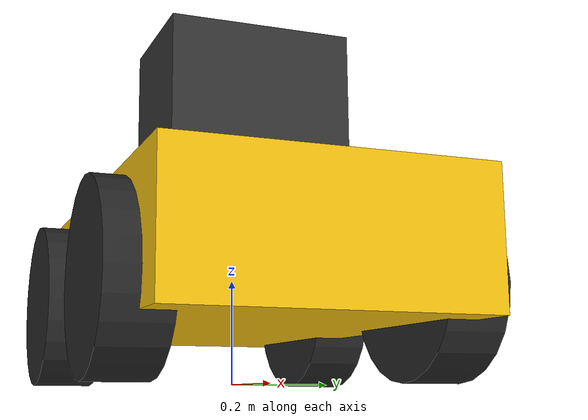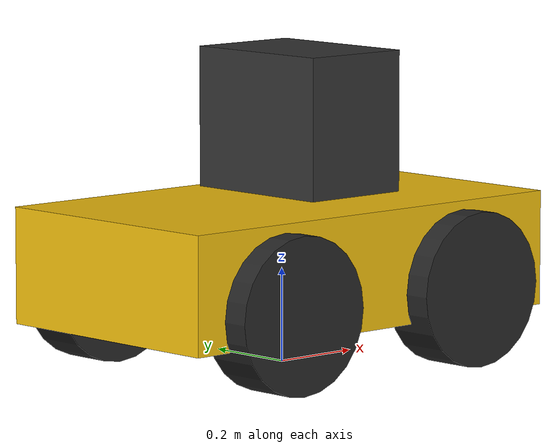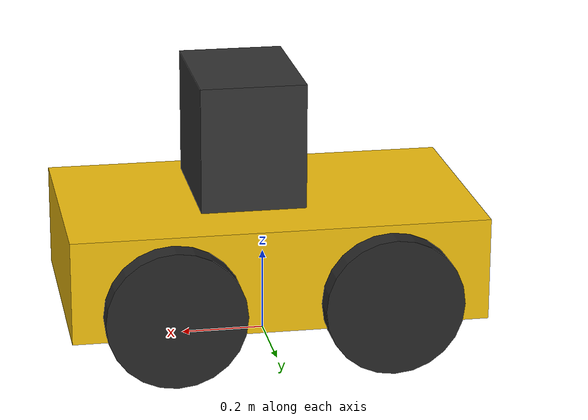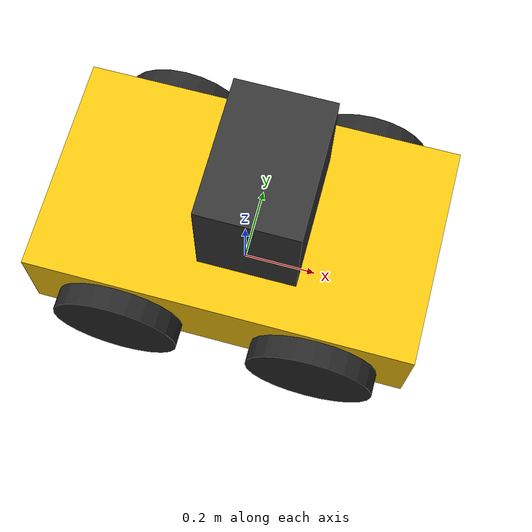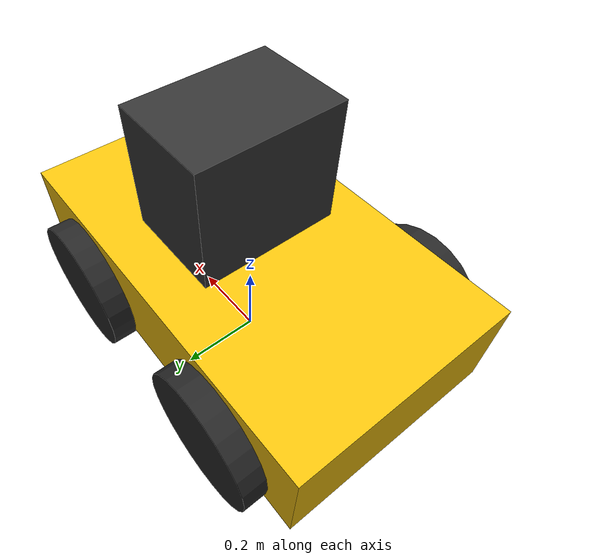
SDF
<?xml version="1.0" ?>
<sdf version="1.6">
  <model name="husky">
    <pose>0 0 0.165 0 0 0</pose>

    <!-- Base Link -->
    <link name="base_link">
      <inertial>
        <pose>0 0 0.06 0 0 0</pose>
        <mass>46.0</mass>
        <inertia>
          <ixx>0.6022</ixx><ixy>-0.0236</ixy><ixz>-0.1197</ixz>
          <iyy>1.7386</iyy><iyz>-0.0015</iyz><izz>2.0296</izz>
        </inertia>
      </inertial>
      <collision name="chassis_col">
        <pose>0 0 0.06 0 0 0</pose>
        <geometry><box><size>0.987 0.570 0.247</size></box></geometry>
      </collision>
      <visual name="chassis_vis">
        <pose>0 0 0.06 0 0 0</pose>
        <geometry><box><size>0.987 0.570 0.247</size></box></geometry>
        <material><ambient>0.95 0.75 0.05 1.0</ambient><diffuse>0.95 0.75 0.05 1.0</diffuse></material>
      </visual>
      <visual name="arch_vis">
        <pose>0.05 0 0.35 0 0 0</pose>
        <geometry><box><size>0.25 0.35 0.30</size></box></geometry>
        <material><ambient>0.2 0.2 0.2 1.0</ambient><diffuse>0.2 0.2 0.2 1.0</diffuse></material>
      </visual>

      <!-- RGB Camera / Depth Sensor -->
      <sensor name="camera" type="camera">
        <pose>0.20 0 0.52 0 0.1745 0</pose>
        <always_on>true</always_on>
        <update_rate>20.0</update_rate>
        <camera name="rgbd_camera">
          <horizontal_fov>1.3962634</horizontal_fov>
          <image><width>640</width><height>480</height><format>R8G8B8</format></image>
          <clip><near>0.1</near><far>25.0</far></clip>
        </camera>
        <plugin name="camera_driver" filename="libgazebo_ros_camera.so">
          <ros>
            <remapping>~/image_raw:=/camera/color/image_raw</remapping>
            <remapping>~/camera_info:=/camera/color/camera_info</remapping>
          </ros>
          <camera_name>camera</camera_name>
          <frame_name>camera_optical_frame</frame_name>
        </plugin>
      </sensor>

      <!-- IMU Sensor -->
      <sensor name="imu_sensor" type="imu">
        <pose>0 0 0.05 0 0 0</pose>
        <always_on>true</always_on>
        <update_rate>100</update_rate>
        <plugin name="imu_plugin" filename="libgazebo_ros_imu_sensor.so">
          <ros><remapping>~/out:=/imu/data</remapping></ros>
          <frame_name>imu_link</frame_name>
        </plugin>
      </sensor>

      <!-- 3D LiDAR Sensor -->
      <sensor name="lidar_sensor" type="ray">
        <pose>0.05 0 0.55 0 0 0</pose>
        <always_on>true</always_on>
        <update_rate>10</update_rate>
        <ray>
          <scan>
            <horizontal><samples>360</samples><min_angle>-3.14159</min_angle><max_angle>3.14159</max_angle></horizontal>
            <vertical><samples>16</samples><min_angle>-0.2618</min_angle><max_angle>0.2618</max_angle></vertical>
          </scan>
          <range><min>0.3</min><max>30.0</max><resolution>0.01</resolution></range>
        </ray>
        <plugin name="lidar_driver" filename="libgazebo_ros_ray_sensor.so">
          <ros><remapping>~/out:=/lidar/points</remapping></ros>
          <output_type>sensor_msgs/PointCloud2</output_type>
          <frame_name>lidar_link</frame_name>
        </plugin>
      </sensor>
    </link>

    <!-- Wheels -->
    <link name="front_left_wheel_link">
      <pose>0.256 0.2854 0 -1.570796 0 0</pose>
      <inertial><mass>2.637</mass><inertia><ixx>0.02467</ixx><iyy>0.02467</iyy><izz>0.04411</izz></inertia></inertial>
      <collision name="col"><geometry><cylinder><radius>0.1651</radius><length>0.1143</length></cylinder></geometry></collision>
      <visual name="vis"><geometry><cylinder><radius>0.1651</radius><length>0.1143</length></cylinder></geometry><material><ambient>0.15 0.15 0.15 1</ambient></material></visual>
    </link>
    <joint name="front_left_wheel_joint" type="revolute">
      <parent>base_link</parent><child>front_left_wheel_link</child><axis><xyz>0 0 1</xyz></axis>
    </joint>

    <link name="front_right_wheel_link">
      <pose>0.256 -0.2854 0 -1.570796 0 0</pose>
      <inertial><mass>2.637</mass><inertia><ixx>0.02467</ixx><iyy>0.02467</iyy><izz>0.04411</izz></inertia></inertial>
      <collision name="col"><geometry><cylinder><radius>0.1651</radius><length>0.1143</length></cylinder></geometry></collision>
      <visual name="vis"><geometry><cylinder><radius>0.1651</radius><length>0.1143</length></cylinder></geometry><material><ambient>0.15 0.15 0.15 1</ambient></material></visual>
    </link>
    <joint name="front_right_wheel_joint" type="revolute">
      <parent>base_link</parent><child>front_right_wheel_link</child><axis><xyz>0 0 1</xyz></axis>
    </joint>

    <link name="rear_left_wheel_link">
      <pose>-0.256 0.2854 0 -1.570796 0 0</pose>
      <inertial><mass>2.637</mass><inertia><ixx>0.02467</ixx><iyy>0.02467</iyy><izz>0.04411</izz></inertia></inertial>
      <collision name="col"><geometry><cylinder><radius>0.1651</radius><length>0.1143</length></cylinder></geometry></collision>
      <visual name="vis"><geometry><cylinder><radius>0.1651</radius><length>0.1143</length></cylinder></geometry><material><ambient>0.15 0.15 0.15 1</ambient></material></visual>
    </link>
    <joint name="rear_left_wheel_joint" type="revolute">
      <parent>base_link</parent><child>rear_left_wheel_link</child><axis><xyz>0 0 1</xyz></axis>
    </joint>

    <link name="rear_right_wheel_link">
      <pose>-0.256 -0.2854 0 -1.570796 0 0</pose>
      <inertial><mass>2.637</mass><inertia><ixx>0.02467</ixx><iyy>0.02467</iyy><izz>0.04411</izz></inertia></inertial>
      <collision name="col"><geometry><cylinder><radius>0.1651</radius><length>0.1143</length></cylinder></geometry></collision>
      <visual name="vis"><geometry><cylinder><radius>0.1651</radius><length>0.1143</length></cylinder></geometry><material><ambient>0.15 0.15 0.15 1</ambient></material></visual>
    </link>
    <joint name="rear_right_wheel_joint" type="revolute">
      <parent>base_link</parent><child>rear_right_wheel_link</child><axis><xyz>0 0 1</xyz></axis>
    </joint>

    <!-- Skid Steer / Differential Drive Plugin -->
    <plugin name="diff_drive_controller" filename="libgazebo_ros_diff_drive.so">
      <ros><remapping>cmd_vel:=/cmd_vel</remapping><remapping>odom:=/odom</remapping></ros>
      <update_rate>50</update_rate>
      <num_wheel_pairs>2</num_wheel_pairs>
      <left_joint>front_left_wheel_joint</left_joint>
      <left_joint>rear_left_wheel_joint</left_joint>
      <right_joint>front_right_wheel_joint</right_joint>
      <right_joint>rear_right_wheel_joint</right_joint>
      <wheel_separation>0.5708</wheel_separation>
      <wheel_diameter>0.3302</wheel_diameter>
      <max_wheel_torque>80</max_wheel_torque>
      <max_wheel_acceleration>3.0</max_wheel_acceleration>
      <publish_odom>true</publish_odom>
      <publish_odom_tf>true</publish_odom_tf>
      <publish_wheel_tf>true</publish_wheel_tf>
      <odometry_frame>odom</odometry_frame>
      <robot_base_frame>base_footprint</robot_base_frame>
    </plugin>
  </model>
</sdf>
